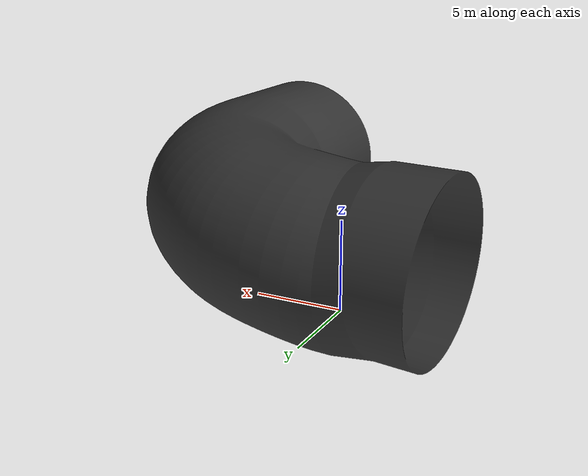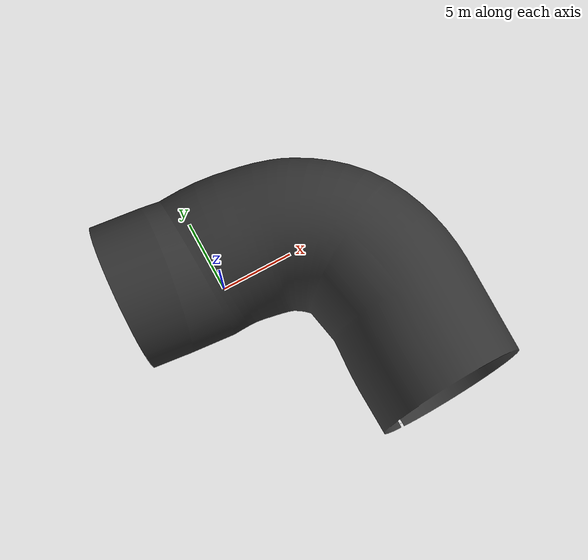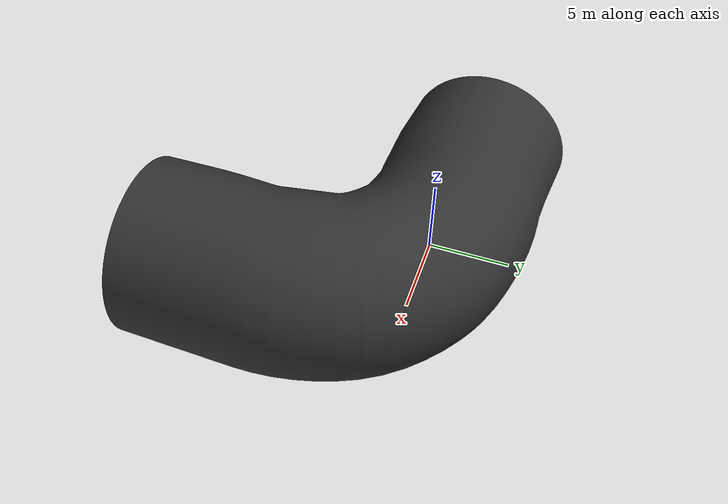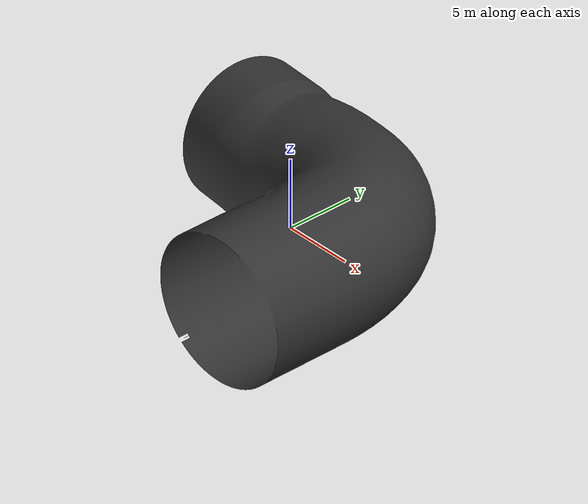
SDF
<?xml version="1.0"?>
<sdf version="1.8">
  <world name="curved_tunnel">
    <plugin filename="libgz-sim-physics-system.so"
            name="gz::sim::systems::Physics"/>
    <plugin filename="libgz-sim-user-commands-system.so"
            name="gz::sim::systems::UserCommands"/>
    <plugin filename="libgz-sim-scene-broadcaster-system.so"
            name="gz::sim::systems::SceneBroadcaster"/>
    <plugin filename="libgz-sim-sensors-system.so"
            name="gz::sim::systems::Sensors">
      <render_engine>ogre2</render_engine>
    </plugin>
   <include>
      <uri>model://curved_tunnel</uri>
      <pose>2 0 -2 0 0 0</pose>
   </include>

  </world>
</sdf>

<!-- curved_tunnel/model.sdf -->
<sdf version="1.8">
  <model name="curved_tunnel">
    <static>true</static>

    <link name="tunnel">

      <!-- Collision -->
      <collision name="collision">
        <geometry>
          <mesh>
            <uri>meshes/curved_tunnel.stl</uri>
          </mesh>
        </geometry>
      </collision>

      <!-- Visual -->
      <visual name="visual">
        <geometry>
          <mesh>
            <uri>meshes/curved_tunnel.stl</uri>
          </mesh>
        </geometry>
        <material>
            <ambient>0.2 0.2 0.2 1</ambient>
            <diffuse>0.2 0.2 0.2 1</diffuse>
        </material>
      </visual>

    </link>
  </model>
</sdf>
